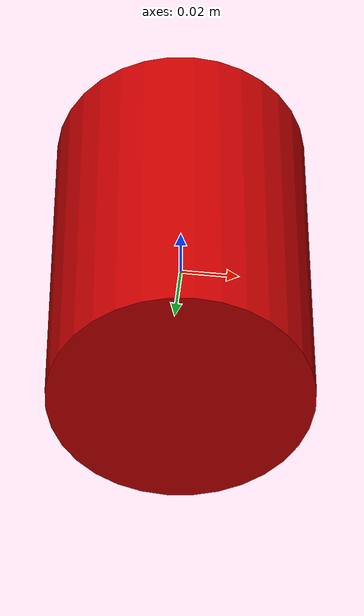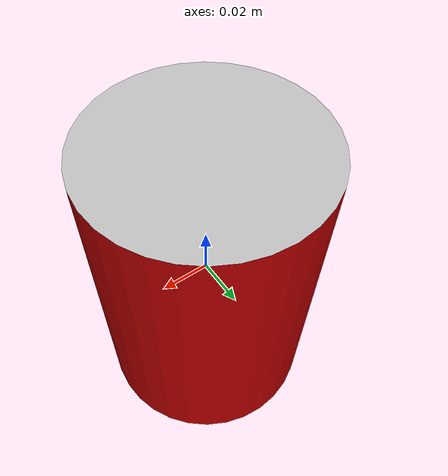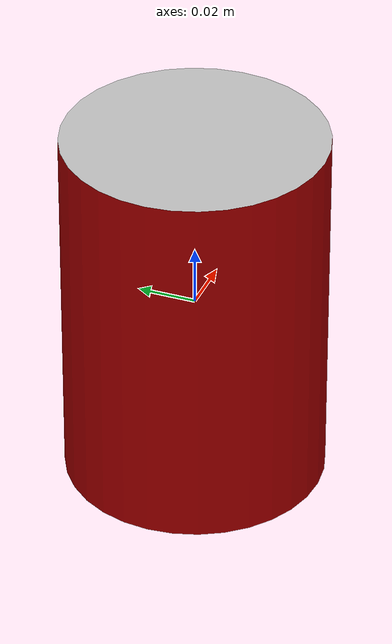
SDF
<?xml version='1.0'?>
<sdf version='1.0'>
  <model name='cup'>
    <link name='link'>
      <pose frame=''>0 0 0 0 -0 0</pose>
      <inertial>
        <mass>0.25</mass>
        <inertia>
          <ixx>0.035833</ixx>
          <ixy>0</ixy>
          <ixz>0</ixz>
          <iyy>0.035833</iyy>
          <iyz>0</iyz>
          <izz>0.035</izz>
        </inertia>
      </inertial>
      <gravity>1</gravity>
      <self_collide>0</self_collide>
      <kinematic>0</kinematic>
      <collision name='collision'>
        <geometry>
          <mesh>
            <uri>model://cup/meshes/cup.dae</uri>
          </mesh>
        </geometry>
      </collision>
      <visual name='visual'>
        <geometry>
          <mesh>
            <uri>model://cup/meshes/cup.dae</uri>
          </mesh>
        </geometry>
      </visual>
    </link>
    <static>0</static>
    <allow_auto_disable>1</allow_auto_disable>
  </model>
</sdf>
